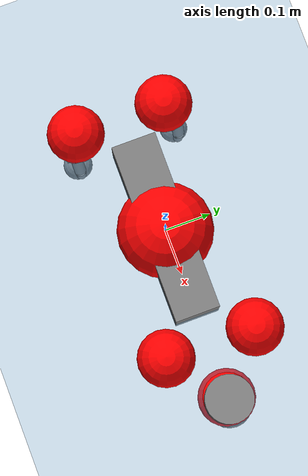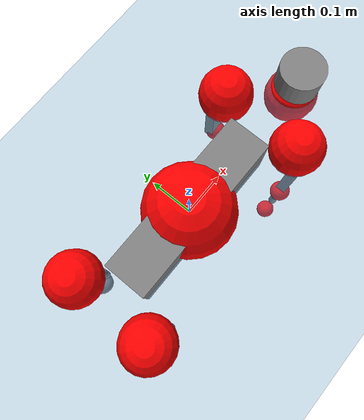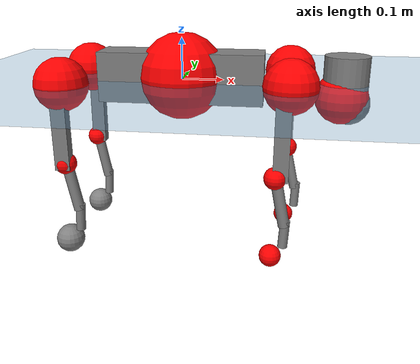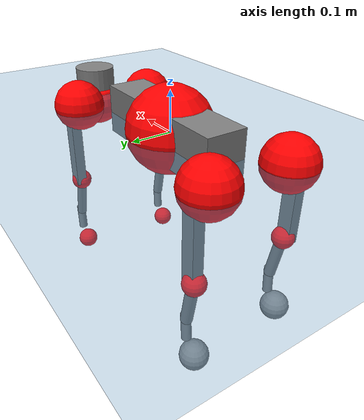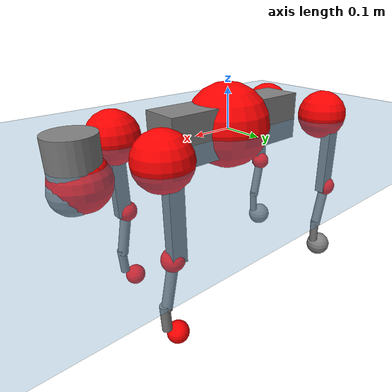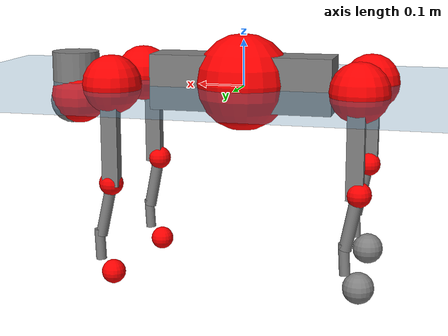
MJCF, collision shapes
<mujoco model="go2">
  <compiler angle="radian" assetdir="assets" balanceinertia="true" inertiafromgeom="false"/>

  <option timestep="0.005" density="1.2" viscosity="2e-05"/>

  <size nkey="1"/>

  <visual>
    <quality shadowsize="8192"/>
    <map shadowclip="0.5"/>
  </visual>

  <default>
    <default class="/">
      <geom contype="0" conaffinity="0" group="1" solref="-1000 -80"/>
      <site size="0.01 0.005 0.005" group="5"/>
      <general forcelimited="true" biastype="affine" gainprm="20" biasprm="0 -20 -0.5"/>
      <default class="go2">
        <joint armature="0.01" damping="0.01" frictionloss="0.2"/>
        <geom condim="1" margin="0.001"/>
        <default class="visual">
          <geom type="mesh" group="2"/>
        </default>
        <default class="collision">
          <geom group="3"/>
          <default class="foot">
            <geom size="0.022 0 0" condim="6" priority="1" friction="0.8 0.02 0.01" solimp="0.015 1 0.022"/>
          </default>
        </default>
        <default class="reward_collision_sphere">
          <geom group="5" rgba="1 0 0 1"/>
        </default>
      </default>
    </default>
  </default>

  <asset>
    <texture type="skybox" colorspace="auto" name="//unnamed_texture_0" builtin="gradient" rgb1="0.95 0.95 0.95" rgb2="0.95 0.95 0.95" width="100" height="600"/>
    <texture type="2d" colorspace="auto" name="texplane" builtin="checker" rgb1="0.345 0.575 0.748" rgb2="0.345 0.575 0.748" markrgb="1 1 1" width="512" height="512"/>
    <material name="MatPlane" class="/" texture="texplane" texuniform="true" texrepeat="2 2" specular="0.9"/>
    <material name="metal" class="/" rgba="0.9 0.95 0.95 1"/>
    <material name="black" class="/" rgba="0 0 0 1"/>
    <material name="white" class="/"/>
    <material name="gray" class="/" rgba="0.671705 0.692426 0.77427 1"/>
    <mesh name="base_0" class="/" file="base_0.obj"/>
    <mesh name="base_1" class="/" file="base_1.obj"/>
    <mesh name="base_2" class="/" file="base_2.obj"/>
    <mesh name="base_3" class="/" file="base_3.obj"/>
    <mesh name="base_4" class="/" file="base_4.obj"/>
    <mesh name="hip_0" class="/" file="hip_0.obj"/>
    <mesh name="hip_1" class="/" file="hip_1.obj"/>
    <mesh name="thigh_0" class="/" file="thigh_0.obj"/>
    <mesh name="thigh_1" class="/" file="thigh_1.obj"/>
    <mesh name="thigh_mirror_0" class="/" file="thigh_mirror_0.obj"/>
    <mesh name="thigh_mirror_1" class="/" file="thigh_mirror_1.obj"/>
    <mesh name="calf_0" class="/" file="calf_0.obj"/>
    <mesh name="calf_1" class="/" file="calf_1.obj"/>
    <mesh name="calf_mirror_0" class="/" file="calf_mirror_0.obj"/>
    <mesh name="calf_mirror_1" class="/" file="calf_mirror_1.obj"/>
    <mesh name="foot" class="/" file="foot.obj"/>
  </asset>

  <worldbody>
    <geom name="floor" class="/" size="100 100 0.125" type="plane" group="0" material="MatPlane"/>
    <light name="toplight_shadow" class="/" pos="0 0 5" dir="0.0990148 0.0990148 -0.990148" type="directional" ambient="0.04 0.04 0.04" diffuse="0.55 0.55 0.55" specular="0.12 0.12 0.12"/>
    <light name="toplight_fill" class="/" pos="0 0 5" dir="0.0990148 0.0990148 -0.990148" type="directional" castshadow="false" ambient="0.04 0.04 0.04" diffuse="0.3 0.3 0.3" specular="0.08 0.08 0.08"/>
    <body name="trunk" childclass="go2" pos="0.00031472 -0.000430604 0.00804841" quat="1 -0.000155551 -8.51077e-05 -0.000544602">
      <inertial pos="0.0291857 -0.0118832 -0.0140552" quat="-0.00143635 0.712113 -0.000872706 0.702063" mass="8.34775" diaginertia="0.45411 0.0489701 0.0182237"/>
      <joint name="//unnamed_joint_0" type="free" armature="0" damping="0" frictionloss="0"/>
      <geom name="//unnamed_geom_1" class="visual" material="black" mesh="base_0"/>
      <geom name="//unnamed_geom_2" class="visual" material="black" mesh="base_1"/>
      <geom name="//unnamed_geom_3" class="visual" material="black" mesh="base_2"/>
      <geom name="//unnamed_geom_4" class="visual" material="white" mesh="base_3"/>
      <geom name="//unnamed_geom_5" class="visual" material="gray" mesh="base_4"/>
      <geom name="trunk_1" class="collision" size="0.197373 0.0490547 0.05981" type="box"/>
      <geom name="trunk_2" class="collision" size="0.052465 0.0472185" pos="0.386418 0 0.00933386" type="cylinder"/>
      <geom name="trunk_3" class="collision" size="0.0493171" pos="0.397265 0 -0.0560032"/>
      <geom name="//unnamed_geom_9" class="reward_collision_sphere" size="0.10493"/>
      <geom name="//unnamed_geom_10" class="reward_collision_sphere" size="0.0629579" pos="0.379639 0 -0.0420024"/>
      <site name="imu" pos="-0.0524001 0.0302149 0.019941" size="0.010493"/>
      <camera name="track" pos="0 -1.71732 0" quat="0.707107 0.707107 0 0" mode="trackcom"/>
      <camera name="ego_camera" pos="0.423026 0 0.0420024" quat="-0.5 -0.5 0.5 0.5"/>
      <body name="FL_hip" pos="0.260977 0.0469506 0.000671226" quat="0.999999 0.00116242 -6.48235e-05 -0.000326216">
        <inertial pos="0.00293779 0.000567241 0.00562941" quat="0.49513 0.50099 0.50396 0.499879" mass="0.835426" diaginertia="0.00417408 0.000308992 0.000324315"/>
        <joint name="FL_hip_joint" pos="0 0 0" axis="0.999992 0.00342096 -0.0020075" range="-0.954282 1.06343" armature="0.00662871" damping="0" frictionloss="0.312241"/>
        <geom name="//unnamed_geom_11" class="visual" material="metal" mesh="hip_0"/>
        <geom name="//unnamed_geom_12" class="visual" material="gray" mesh="hip_1"/>
        <geom name="//unnamed_geom_13" class="collision" size="0.0482678 0.020986" pos="0 0.0686927 0" quat="0.707107 0.707107 0 0" type="cylinder"/>
        <geom name="//unnamed_geom_14" class="reward_collision_sphere" size="0.0629579" pos="0 0.0601061 0"/>
        <body name="FL_thigh" pos="-0.00302828 0.083017 -0.0045978" quat="1 -1.29998e-05 2.15284e-05 -1.4342e-05">
          <inertial pos="-0.00613648 -0.0203107 -0.024611" quat="0.829368 0.081981 -0.0239971 0.552134" mass="1.46638" diaginertia="0.0264323 0.00274235 0.000816564"/>
          <joint name="FL_thigh_joint" pos="0 0 0" axis="-0.0112248 0.9997 -0.0217891" stiffness="0.015756" range="-1.42557 3.39813" armature="0.00887206" damping="0.017639" frictionloss="0.210533"/>
          <geom name="//unnamed_geom_15" class="visual" material="metal" mesh="thigh_0"/>
          <geom name="//unnamed_geom_16" class="visual" material="gray" mesh="thigh_1"/>
          <geom name="//unnamed_geom_17" class="collision" size="0.11175 0.0128539 0.0178381" pos="0 0 -0.0994056" quat="0.707107 0 0.707107 0" type="box"/>
          <body name="FL_calf" pos="0.00462082 -0.00785524 -0.207536" quat="0.999984 0.000591601 -0.00425063 0.00370998">
            <inertial pos="0.00799614 -0.00071721 -0.133055" quat="0.711509 0.00199805 -0.00562286 0.702651" mass="0.323031" diaginertia="0.00672515 0.000707723 4.19249e-05"/>
            <joint name="FL_calf_joint" pos="0 0 0" axis="-0.010587 0.999917 -0.00740769" stiffness="0.00329891" range="-2.73086 -0.814075" armature="0.0132421" damping="0" frictionloss="0.294623"/>
            <geom name="//unnamed_geom_18" class="visual" material="gray" mesh="calf_0"/>
            <geom name="//unnamed_geom_19" class="visual" material="black" mesh="calf_1"/>
            <geom name="FL_calf0" class="collision" size="0.0125916 0.0629579" pos="0.0108468 0 -0.0560032" quat="0.994493 0 -0.104807 0" type="cylinder"/>
            <geom name="//unnamed_geom_21" class="collision" size="0.0115423 0.0341022" pos="0.0271171 0 -0.138141" quat="0.999688 0 0.0249974 0" type="cylinder"/>
            <geom name="//unnamed_geom_22" class="visual" pos="0 0 -0.198811" quat="1 0 0 0" material="black" mesh="foot"/>
            <geom name="FL_foot" class="foot" size="0.014678" pos="-0.00271171 0 -0.198811"/>
            <geom name="//unnamed_geom_24" class="reward_collision_sphere" size="0.0262325"/>
            <geom name="//unnamed_geom_25" class="reward_collision_sphere" size="0.0262325" pos="-0.00271171 0 -0.198811"/>
            <site name="FL_foot" class="foot" pos="-0.00271171 0 -0.198811" size="0.010493"/>
          </body>
        </body>
      </body>
      <body name="FR_hip" pos="0.258905 -0.0335338 -5.87985e-06" quat="0.999989 0.000591841 0.00301921 -0.00360544">
        <inertial pos="-0.00744341 -0.00239205 0.000812127" quat="0.502553 0.50339 0.501686 0.492292" mass="0.855816" diaginertia="0.00456724 0.000337051 0.000333242"/>
        <joint name="FR_hip_joint" pos="0 0 0" axis="0.999942 -0.00837863 -0.00676475" range="-1.22616 1.27218" armature="0.00975924" damping="0" frictionloss="0.284615"/>
        <geom name="//unnamed_geom_26" class="visual" pos="0 -6.50997e-10 -2.79226e-08" quat="4.63268e-05 1 0 0" material="metal" mesh="hip_0"/>
        <geom name="//unnamed_geom_27" class="visual" pos="0 -1.05534e-09 6.90632e-08" quat="4.63268e-05 1 0 0" material="gray" mesh="hip_1"/>
        <geom name="//unnamed_geom_28" class="collision" size="0.0482678 0.020986" pos="0 -0.0686927 0" quat="0.707107 0.707107 0 0" type="cylinder"/>
        <geom name="//unnamed_geom_29" class="reward_collision_sphere" size="0.0629579" pos="0 -0.0601061 0"/>
        <body name="FR_thigh" pos="-0.0126441 -0.0883115 -0.00160344" quat="0.999999 0.00139752 0.000228222 -1.91229e-05">
          <inertial pos="-0.00333436 0.0196745 -0.0310785" quat="0.551707 -0.0265009 0.0821479 0.829559" mass="1.19032" diaginertia="0.0260639 0.00241639 0.000512231"/>
          <joint name="FR_thigh_joint" pos="0 0 0" axis="-0.00447055 -0.998297 -0.0581717" range="-3.75438 1.79668" armature="0.011194" damping="0.0490921" frictionloss="0.230498"/>
          <geom name="//unnamed_geom_30" class="visual" material="metal" mesh="thigh_mirror_0"/>
          <geom name="//unnamed_geom_31" class="visual" material="gray" mesh="thigh_mirror_1"/>
          <geom name="//unnamed_geom_32" class="collision" size="0.11175 0.0128539 0.0178381" pos="0 0 -0.0994056" quat="0.707107 0 0.707107 0" type="box"/>
          <body name="FR_calf" pos="-0.0116082 -0.0017038 -0.204509" quat="1 -0.000568646 -0.00023088 0.000277117">
            <inertial pos="0.0126201 0.00248331 -0.144482" quat="0.706004 -0.0131608 -0.00884993 0.70803" mass="0.331635" diaginertia="0.00637691 0.000684018 3.76834e-05"/>
            <joint name="FR_calf_joint" pos="0 0 0" axis="-0.0332527 -0.997758 0.0580863" stiffness="0.0195885" range="0.784476 2.91713" armature="0.0112351" damping="0.00342276" frictionloss="0.348446"/>
            <geom name="//unnamed_geom_33" class="visual" material="gray" mesh="calf_mirror_0"/>
            <geom name="//unnamed_geom_34" class="visual" material="black" mesh="calf_mirror_1"/>
            <geom name="FR_calf0" class="collision" size="0.0136409 0.0629579" pos="0.0135585 0 -0.0560032" quat="0.995004 0 -0.0998334 0" type="cylinder"/>
            <geom name="//unnamed_geom_36" class="collision" size="0.0115423 0.0341022" pos="0.0271171 0 -0.138141" quat="0.999688 0 0.0249974 0" type="cylinder"/>
            <geom name="//unnamed_geom_37" class="visual" pos="0 0 -0.198811" quat="1 0 0 0" material="black" mesh="foot"/>
            <geom name="FR_foot" class="foot" size="0.0214829" pos="-0.00271171 0 -0.198811"/>
            <geom name="//unnamed_geom_39" class="reward_collision_sphere" size="0.0262325"/>
            <geom name="//unnamed_geom_40" class="reward_collision_sphere" size="0.0262325" pos="-0.00271171 0 -0.198811"/>
            <site name="FR_foot" class="foot" pos="-0.00271171 0 -0.198811" size="0.010493"/>
          </body>
        </body>
      </body>
      <body name="RL_hip" pos="-0.260506 0.0315683 -0.000427926" quat="1 7.26757e-06 -3.21633e-06 -8.00968e-07">
        <inertial pos="0.0127159 0.0116136 -0.00111358" quat="0.551555 0.449923 0.482953 0.510012" mass="0.911267" diaginertia="0.00385745 0.000251583 0.000358707"/>
        <joint name="RL_hip_joint" pos="0 0 0" axis="-0.999189 0.00341979 0.0401209" stiffness="0.0437637" range="-1.08629 1.15499" armature="0.0109587" damping="0.0441551" frictionloss="0.150617"/>
        <geom name="//unnamed_geom_41" class="visual" pos="-3.68036e-09 0 -7.21435e-07" quat="4.63268e-05 0 1 0" material="metal" mesh="hip_0"/>
        <geom name="//unnamed_geom_42" class="visual" pos="-5.9663e-09 0 -6.3981e-07" quat="4.63268e-05 0 1 0" material="gray" mesh="hip_1"/>
        <geom name="//unnamed_geom_43" class="collision" size="0.0482678 0.020986" pos="0 0.0686927 0" quat="0.707107 0.707107 0 0" type="cylinder"/>
        <geom name="//unnamed_geom_44" class="reward_collision_sphere" size="0.0629579" pos="0 0.0601061 0"/>
        <body name="RL_thigh" pos="0.00136198 0.0920636 -0.00288973" quat="0.999996 -0.00229128 0.00136237 0.00116362">
          <inertial pos="-0.00157125 -0.0112395 -0.0309792" quat="0.828059 0.0953723 -0.0375149 0.551194" mass="1.27416" diaginertia="0.0237031 0.00251479 0.000497848"/>
          <joint name="RL_thigh_joint" pos="0 0 0" axis="0.010466 0.999936 -0.00420735" range="-0.528221 4.55806" armature="0.0108813" damping="0.0233565" frictionloss="0.216079"/>
          <geom name="//unnamed_geom_45" class="visual" material="metal" mesh="thigh_0"/>
          <geom name="//unnamed_geom_46" class="visual" material="gray" mesh="thigh_1"/>
          <geom name="//unnamed_geom_47" class="collision" size="0.11175 0.0128539 0.0178381" pos="0 0 -0.0994056" quat="0.707107 0 0.707107 0" type="box"/>
          <body name="RL_calf" pos="-0.00867172 0.0012327 -0.199715" quat="0.999989 -0.00395123 0.00234761 0.00135858">
            <inertial pos="-0.000381262 0.00288883 -0.124362" quat="0.710813 0.00219561 -0.004776 0.703362" mass="0.261142" diaginertia="0.00586656 0.00048681 2.57842e-05"/>
            <joint name="RL_calf_joint" pos="0 0 0" axis="0.0342479 0.999401 -0.00498932" stiffness="0.00775246" range="-2.735 -0.560386" armature="0.0102979" damping="0" frictionloss="0.154365"/>
            <geom name="//unnamed_geom_48" class="visual" material="gray" mesh="calf_0"/>
            <geom name="//unnamed_geom_49" class="visual" material="black" mesh="calf_1"/>
            <geom name="RL_calf0" class="collision" size="0.0136409 0.0629579" pos="0.0135585 0 -0.0560032" quat="0.995004 0 -0.0998334 0" type="cylinder"/>
            <geom name="//unnamed_geom_51" class="collision" size="0.0115423 0.0341022" pos="0.0271171 0 -0.138141" quat="0.999688 0 0.0249974 0" type="cylinder"/>
            <geom name="//unnamed_geom_52" class="visual" pos="0 0 -0.198811" quat="1 0 0 0" material="black" mesh="foot"/>
            <geom name="RL_foot" class="foot" size="0.0332072" pos="-0.00271171 0 -0.198811"/>
            <geom name="//unnamed_geom_54" class="reward_collision_sphere" size="0.0262325"/>
            <geom name="//unnamed_geom_55" class="reward_collision_sphere" size="0.0262325" pos="-0.00271171 0 -0.198811"/>
            <site name="RL_foot" class="foot" pos="-0.00271171 0 -0.198811" size="0.010493"/>
          </body>
        </body>
      </body>
      <body name="RR_hip" pos="-0.263224 -0.0488972 -0.00639641" quat="0.999987 -6.86953e-05 -0.00149403 -0.00492591">
        <inertial pos="0.00555316 -0.00701426 0.00469269" quat="0.498184 0.446619 0.5028 0.547298" mass="0.881903" diaginertia="0.00403881 0.000324131 0.000368418"/>
        <joint name="RR_hip_joint" pos="0 0 0" axis="-0.999851 -0.00421618 0.0167413" stiffness="0.0153928" range="-0.845885 1.00644" armature="0.0164745" damping="0.0268473" frictionloss="0.136869"/>
        <geom name="//unnamed_geom_56" class="visual" pos="3.66314e-09 -6.50997e-10 -6.93512e-07" quat="2.14617e-09 4.63268e-05 4.63268e-05 -1" material="metal" mesh="hip_0"/>
        <geom name="//unnamed_geom_57" class="visual" pos="6.00887e-09 -1.05534e-09 -7.08873e-07" quat="2.14617e-09 4.63268e-05 4.63268e-05 -1" material="gray" mesh="hip_1"/>
        <geom name="//unnamed_geom_58" class="collision" size="0.0482678 0.020986" pos="0 -0.0686927 0" quat="0.707107 0.707107 0 0" type="cylinder"/>
        <geom name="//unnamed_geom_59" class="reward_collision_sphere" size="0.0629579" pos="0 -0.0601061 0"/>
        <body name="RR_thigh" pos="0.000710139 -0.0843159 0.0119097" quat="1 0.000233175 2.0067e-05 0.000179025">
          <inertial pos="-0.00441772 0.00570423 -0.0368019" quat="0.558074 0.0232411 0.0952345 0.82398" mass="1.53088" diaginertia="0.031536 0.00313137 0.000725624"/>
          <joint name="RR_thigh_joint" pos="0 0 0" axis="0.0252897 -0.999374 0.0247463" range="-4.62677 0.751895" armature="0.00291163" damping="0" frictionloss="0.177372"/>
          <geom name="//unnamed_geom_60" class="visual" material="metal" mesh="thigh_mirror_0"/>
          <geom name="//unnamed_geom_61" class="visual" material="gray" mesh="thigh_mirror_1"/>
          <geom name="//unnamed_geom_62" class="collision" size="0.11175 0.0128539 0.0178381" pos="0 0 -0.0994056" quat="0.707107 0 0.707107 0" type="box"/>
          <body name="RR_calf" pos="0.000446686 0.0090583 -0.200087" quat="0.999991 2.89459e-05 0.0041657 0.00037936">
            <inertial pos="0.00310972 -0.00102332 -0.134124" quat="0.661736 0.00311584 -0.0181521 0.749511" mass="0.338959" diaginertia="0.00717448 0.00075749 3.34619e-05"/>
            <joint name="RR_calf_joint" pos="0 0 0" axis="0.0504089 -0.998495 0.021612" range="0.653611 2.50939" armature="0.0100731" damping="0" frictionloss="0.202143"/>
            <geom name="//unnamed_geom_63" class="visual" material="gray" mesh="calf_mirror_0"/>
            <geom name="//unnamed_geom_64" class="visual" material="black" mesh="calf_mirror_1"/>
            <geom name="RR_calf0" class="collision" size="0.0136409 0.0629579" pos="0.0135585 0 -0.0560032" quat="0.995004 0 -0.0998334 0" type="cylinder"/>
            <geom name="//unnamed_geom_66" class="collision" size="0.0115423 0.0341022" pos="0.0271171 0 -0.138141" quat="0.999688 0 0.0249974 0" type="cylinder"/>
            <geom name="//unnamed_geom_67" class="visual" pos="0 0 -0.198811" quat="1 0 0 0" material="black" mesh="foot"/>
            <geom name="RR_foot" class="foot" size="0.0345003" pos="-0.00271171 0 -0.198811"/>
            <geom name="//unnamed_geom_69" class="reward_collision_sphere" size="0.0262325"/>
            <geom name="//unnamed_geom_70" class="reward_collision_sphere" size="0.0262325" pos="-0.00271171 0 -0.198811"/>
            <site name="RR_foot" class="foot" pos="-0.00271171 0 -0.198811" size="0.010493"/>
          </body>
        </body>
      </body>
    </body>
  </worldbody>

  <contact>
    <pair class="/" geom1="floor" geom2="FL_foot" name="//unnamed_contact_0"/>
    <pair class="/" geom1="floor" geom2="FR_foot" name="//unnamed_contact_1"/>
    <pair class="/" geom1="floor" geom2="RL_foot" name="//unnamed_contact_2"/>
    <pair class="/" geom1="floor" geom2="RR_foot" name="//unnamed_contact_3"/>
  </contact>

  <actuator>
    <general name="FL_hip" class="/" joint="FL_hip_joint" forcerange="-30.634 30.634" gainprm="14.9244" biasprm="0 -14.9244 -0.46489"/>
    <general name="FL_thigh" class="/" joint="FL_thigh_joint" forcerange="-37.082 37.082" gainprm="14.9244" biasprm="0 -14.9244 -0.46489"/>
    <general name="FL_calf" class="/" joint="FL_calf_joint" forcerange="-43.4801 43.4801" gainprm="14.9244" biasprm="0 -14.9244 -0.46489"/>
    <general name="FR_hip" class="/" joint="FR_hip_joint" forcerange="-27.6327 27.6327" gainprm="14.9244" biasprm="0 -14.9244 -0.46489"/>
    <general name="FR_thigh" class="/" joint="FR_thigh_joint" forcerange="-21.4785 21.4785" gainprm="14.9244" biasprm="0 -14.9244 -0.46489"/>
    <general name="FR_calf" class="/" joint="FR_calf_joint" forcerange="-56.5766 56.5766" gainprm="14.9244" biasprm="0 -14.9244 -0.46489"/>
    <general name="RL_hip" class="/" joint="RL_hip_joint" forcerange="-17.9682 17.9682" gainprm="14.9244" biasprm="0 -14.9244 -0.46489"/>
    <general name="RL_thigh" class="/" joint="RL_thigh_joint" forcerange="-24.8231 24.8231" gainprm="14.9244" biasprm="0 -14.9244 -0.46489"/>
    <general name="RL_calf" class="/" joint="RL_calf_joint" forcerange="-57.9577 57.9577" gainprm="14.9244" biasprm="0 -14.9244 -0.46489"/>
    <general name="RR_hip" class="/" joint="RR_hip_joint" forcerange="-36.8504 36.8504" gainprm="14.9244" biasprm="0 -14.9244 -0.46489"/>
    <general name="RR_thigh" class="/" joint="RR_thigh_joint" forcerange="-26.013 26.013" gainprm="14.9244" biasprm="0 -14.9244 -0.46489"/>
    <general name="RR_calf" class="/" joint="RR_calf_joint" forcerange="-50.8613 50.8613" gainprm="14.9244" biasprm="0 -14.9244 -0.46489"/>
  </actuator>

  <sensor>
    <gyro site="imu" name="imu_angular_velocity"/>
    <velocimeter site="imu" name="imu_linear_velocity"/>
    <framelinvel objtype="site" objname="FL_foot" name="FL_foot_global_linear_velocity"/>
    <framelinvel objtype="site" objname="FR_foot" name="FR_foot_global_linear_velocity"/>
    <framelinvel objtype="site" objname="RL_foot" name="RL_foot_global_linear_velocity"/>
    <framelinvel objtype="site" objname="RR_foot" name="RR_foot_global_linear_velocity"/>
  </sensor>

  <keyframe>
    <key name="home" qpos="0 0 0.325 1 0 0 0 0.1 0.8 -1.5 -0.1 -0.8 1.5 -0.1 0.8 -1.5 0.1 -0.8 1.5"/>
  </keyframe>
</mujoco>
